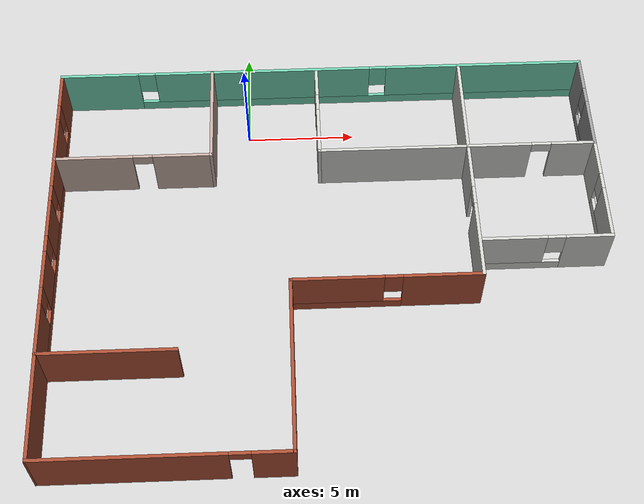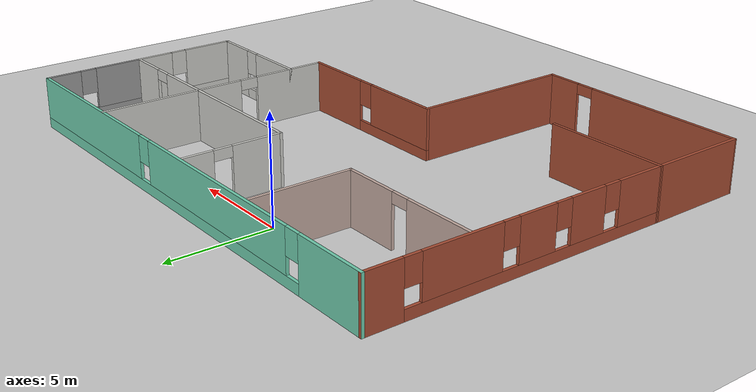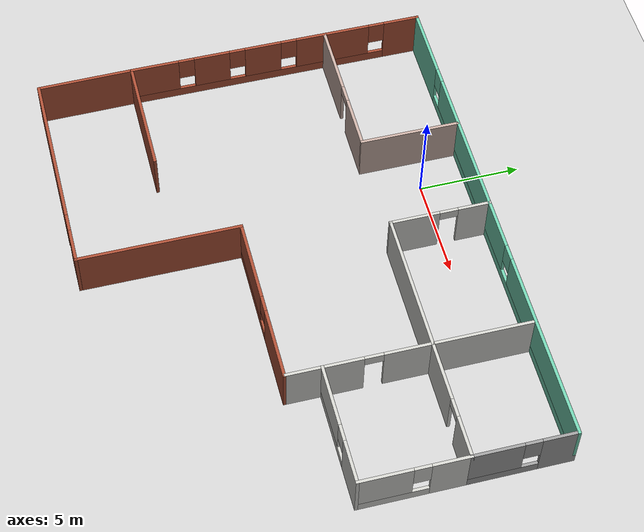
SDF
<sdf version="1.6">
 <world name="default">
  <model name="ground_plane">
   <static>1</static>
   <link name="link">
    <collision name="collision">
     <geometry><plane><normal>0 0 1</normal><size>100 100</size></plane></geometry>
     <surface>
      <contact><collide_bitmask>65535</collide_bitmask></contact>
      <friction><ode><mu>100</mu><mu2>50</mu2></ode></friction>
     </surface>
    </collision>
    <visual name="visual">
     <cast_shadows>0</cast_shadows>
     <geometry><plane><normal>0 0 1</normal><size>100 100</size></plane></geometry>
     <material>
      <script><uri>file://media/materials/scripts/gazebo.material</uri><name>Gazebo/Grey</name></script>
     </material>
    </visual>
   </link>
  </model>
  <model name="house">
   <pose>3.5945 -7.51988 0 0 -0 0</pose>
   <link name="Wall_0">
    <pose>-12.4247 2.34692 0 0 0 -1.5708</pose>
    <visual name="Wall_0_Visual_0">
     <pose>-6.57999 0 1.25 0 -0 0</pose>
     <geometry><box><size>1.84003 0.15 2.5</size></box></geometry>
     <material>
      <script><uri>file://media/materials/scripts/gazebo.material</uri><name>Gazebo/Bricks</name></script>
      <ambient>1 1 1 1</ambient>
     </material>
     <meta><layer>0</layer></meta>
    </visual>
    <collision name="Wall_0_Collision_0">
     <geometry><box><size>1.84003 0.15 2.5</size></box></geometry>
     <pose>-6.57999 0 1.25 0 -0 0</pose>
    </collision>
    <visual name="Wall_0_Visual_1">
     <pose>0.920014 0 0.25 0 -0 0</pose>
     <geometry><box><size>13.16 0.15 0.5</size></box></geometry>
     <material>
      <script><uri>file://media/materials/scripts/gazebo.material</uri><name>Gazebo/Bricks</name></script>
      <ambient>1 1 1 1</ambient>
     </material>
     <meta><layer>0</layer></meta>
    </visual>
    <collision name="Wall_0_Collision_1">
     <geometry><box><size>13.16 0.15 0.5</size></box></geometry>
     <pose>0.920014 0 0.25 0 -0 0</pose>
    </collision>
    <visual name="Wall_0_Visual_2">
     <pose>-2.95937 0 1.5 0 -0 0</pose>
     <geometry><box><size>3.80122 0.15 2</size></box></geometry>
     <material>
      <script><uri>file://media/materials/scripts/gazebo.material</uri><name>Gazebo/Bricks</name></script>
      <ambient>1 1 1 1</ambient>
     </material>
     <meta><layer>0</layer></meta>
    </visual>
    <collision name="Wall_0_Collision_2">
     <geometry><box><size>3.80122 0.15 2</size></box></geometry>
     <pose>-2.95937 0 1.5 0 -0 0</pose>
    </collision>
    <visual name="Wall_0_Visual_3">
     <pose>0.678805 0 1.5 0 -0 0</pose>
     <geometry><box><size>1.87512 0.15 2</size></box></geometry>
     <material>
      <script><uri>file://media/materials/scripts/gazebo.material</uri><name>Gazebo/Bricks</name></script>
      <ambient>1 1 1 1</ambient>
     </material>
     <meta><layer>0</layer></meta>
    </visual>
    <collision name="Wall_0_Collision_3">
     <geometry><box><size>1.87512 0.15 2</size></box></geometry>
     <pose>0.678805 0 1.5 0 -0 0</pose>
    </collision>
    <visual name="Wall_0_Visual_4">
     <pose>3.32718 0 1.5 0 -0 0</pose>
     <geometry><box><size>1.82162 0.15 2</size></box></geometry>
     <material>
      <script><uri>file://media/materials/scripts/gazebo.material</uri><name>Gazebo/Bricks</name></script>
      <ambient>1 1 1 1</ambient>
     </material>
     <meta><layer>0</layer></meta>
    </visual>
    <collision name="Wall_0_Collision_4">
     <geometry><box><size>1.82162 0.15 2</size></box></geometry>
     <pose>3.32718 0 1.5 0 -0 0</pose>
    </collision>
    <visual name="Wall_0_Visual_5">
     <pose>6.269 0 1.5 0 -0 0</pose>
     <geometry><box><size>2.46201 0.15 2</size></box></geometry>
     <material>
      <script><uri>file://media/materials/scripts/gazebo.material</uri><name>Gazebo/Bricks</name></script>
      <ambient>1 1 1 1</ambient>
     </material>
     <meta><layer>0</layer></meta>
    </visual>
    <collision name="Wall_0_Collision_5">
     <geometry><box><size>2.46201 0.15 2</size></box></geometry>
     <pose>6.269 0 1.5 0 -0 0</pose>
    </collision>
    <visual name="Wall_0_Visual_6">
     <pose>-5.25997 0 1.9 0 -0 0</pose>
     <geometry><box><size>0.8 0.15 1.2</size></box></geometry>
     <material>
      <script><uri>file://media/materials/scripts/gazebo.material</uri><name>Gazebo/Bricks</name></script>
      <ambient>1 1 1 1</ambient>
     </material>
     <meta><layer>0</layer></meta>
    </visual>
    <collision name="Wall_0_Collision_6">
     <geometry><box><size>0.8 0.15 1.2</size></box></geometry>
     <pose>-5.25997 0 1.9 0 -0 0</pose>
    </collision>
    <visual name="Wall_0_Visual_7">
     <pose>-0.658757 0 1.9 0 -0 0</pose>
     <geometry><box><size>0.8 0.15 1.2</size></box></geometry>
     <material>
      <script><uri>file://media/materials/scripts/gazebo.material</uri><name>Gazebo/Bricks</name></script>
      <ambient>1 1 1 1</ambient>
     </material>
     <meta><layer>0</layer></meta>
    </visual>
    <collision name="Wall_0_Collision_7">
     <geometry><box><size>0.8 0.15 1.2</size></box></geometry>
     <pose>-0.658757 0 1.9 0 -0 0</pose>
    </collision>
    <visual name="Wall_0_Visual_8">
     <pose>2.01637 0 1.9 0 -0 0</pose>
     <geometry><box><size>0.8 0.15 1.2</size></box></geometry>
     <material>
      <script><uri>file://media/materials/scripts/gazebo.material</uri><name>Gazebo/Bricks</name></script>
      <ambient>1 1 1 1</ambient>
     </material>
     <meta><layer>0</layer></meta>
    </visual>
    <collision name="Wall_0_Collision_8">
     <geometry><box><size>0.8 0.15 1.2</size></box></geometry>
     <pose>2.01637 0 1.9 0 -0 0</pose>
    </collision>
    <visual name="Wall_0_Visual_9">
     <pose>4.63799 0 1.9 0 -0 0</pose>
     <geometry><box><size>0.8 0.15 1.2</size></box></geometry>
     <material>
      <script><uri>file://media/materials/scripts/gazebo.material</uri><name>Gazebo/Bricks</name></script>
      <ambient>1 1 1 1</ambient>
     </material>
     <meta><layer>0</layer></meta>
    </visual>
    <collision name="Wall_0_Collision_9">
     <geometry><box><size>0.8 0.15 1.2</size></box></geometry>
     <pose>4.63799 0 1.9 0 -0 0</pose>
    </collision>
   </link>
   <link name="Wall_10">
    <pose>9.5005 -0.178123 0 0 -0 3.14159</pose>
    <visual name="Wall_10_Visual_0">
     <pose>-1.93126 0 1.25 0 -0 0</pose>
     <geometry><box><size>2.13747 0.15 2.5</size></box></geometry>
     <material>
      <script><uri>file://media/materials/scripts/gazebo.material</uri><name>Gazebo/CeilingTiled</name></script>
      <ambient>1 1 1 1</ambient>
     </material>
     <meta><layer>0</layer></meta>
    </visual>
    <collision name="Wall_10_Collision_0">
     <geometry><box><size>2.13747 0.15 2.5</size></box></geometry>
     <pose>-1.93126 0 1.25 0 -0 0</pose>
    </collision>
    <visual name="Wall_10_Visual_1">
     <pose>1.06874 0 0.25 0 -0 0</pose>
     <geometry><box><size>3.86253 0.15 0.5</size></box></geometry>
     <material>
      <script><uri>file://media/materials/scripts/gazebo.material</uri><name>Gazebo/CeilingTiled</name></script>
      <ambient>1 1 1 1</ambient>
     </material>
     <meta><layer>0</layer></meta>
    </visual>
    <collision name="Wall_10_Collision_1">
     <geometry><box><size>3.86253 0.15 0.5</size></box></geometry>
     <pose>1.06874 0 0.25 0 -0 0</pose>
    </collision>
    <visual name="Wall_10_Visual_2">
     <pose>1.46874 0 1.5 0 -0 0</pose>
     <geometry><box><size>3.06253 0.15 2</size></box></geometry>
     <material>
      <script><uri>file://media/materials/scripts/gazebo.material</uri><name>Gazebo/CeilingTiled</name></script>
      <ambient>1 1 1 1</ambient>
     </material>
     <meta><layer>0</layer></meta>
    </visual>
    <collision name="Wall_10_Collision_2">
     <geometry><box><size>3.06253 0.15 2</size></box></geometry>
     <pose>1.46874 0 1.5 0 -0 0</pose>
    </collision>
    <visual name="Wall_10_Visual_3">
     <pose>-0.462526 0 1.9 0 -0 0</pose>
     <geometry><box><size>0.8 0.15 1.2</size></box></geometry>
     <material>
      <script><uri>file://media/materials/scripts/gazebo.material</uri><name>Gazebo/CeilingTiled</name></script>
      <ambient>1 1 1 1</ambient>
     </material>
     <meta><layer>0</layer></meta>
    </visual>
    <collision name="Wall_10_Collision_3">
     <geometry><box><size>0.8 0.15 1.2</size></box></geometry>
     <pose>-0.462526 0 1.9 0 -0 0</pose>
    </collision>
   </link>
   <link name="Wall_12">
    <pose>2.4005 -1.92112 0 0 -0 3.14159</pose>
    <visual name="Wall_12_Visual_0">
     <pose>-2.46809 0 1.25 0 -0 0</pose>
     <geometry><box><size>3.56381 0.15 2.5</size></box></geometry>
     <material>
      <script><uri>file://media/materials/scripts/gazebo.material</uri><name>Gazebo/Bricks</name></script>
      <ambient>1 1 1 1</ambient>
     </material>
     <meta><layer>0</layer></meta>
    </visual>
    <collision name="Wall_12_Collision_0">
     <geometry><box><size>3.56381 0.15 2.5</size></box></geometry>
     <pose>-2.46809 0 1.25 0 -0 0</pose>
    </collision>
    <visual name="Wall_12_Visual_1">
     <pose>1.78191 0 0.25 0 -0 0</pose>
     <geometry><box><size>4.93619 0.15 0.5</size></box></geometry>
     <material>
      <script><uri>file://media/materials/scripts/gazebo.material</uri><name>Gazebo/Bricks</name></script>
      <ambient>1 1 1 1</ambient>
     </material>
     <meta><layer>0</layer></meta>
    </visual>
    <collision name="Wall_12_Collision_1">
     <geometry><box><size>4.93619 0.15 0.5</size></box></geometry>
     <pose>1.78191 0 0.25 0 -0 0</pose>
    </collision>
    <visual name="Wall_12_Visual_2">
     <pose>2.18191 0 1.5 0 -0 0</pose>
     <geometry><box><size>4.13619 0.15 2</size></box></geometry>
     <material>
      <script><uri>file://media/materials/scripts/gazebo.material</uri><name>Gazebo/Bricks</name></script>
      <ambient>1 1 1 1</ambient>
     </material>
     <meta><layer>0</layer></meta>
    </visual>
    <collision name="Wall_12_Collision_2">
     <geometry><box><size>4.13619 0.15 2</size></box></geometry>
     <pose>2.18191 0 1.5 0 -0 0</pose>
    </collision>
    <visual name="Wall_12_Visual_3">
     <pose>-0.286187 0 1.9 0 -0 0</pose>
     <geometry><box><size>0.8 0.15 1.2</size></box></geometry>
     <material>
      <script><uri>file://media/materials/scripts/gazebo.material</uri><name>Gazebo/Bricks</name></script>
      <ambient>1 1 1 1</ambient>
     </material>
     <meta><layer>0</layer></meta>
    </visual>
    <collision name="Wall_12_Collision_3">
     <geometry><box><size>0.8 0.15 1.2</size></box></geometry>
     <pose>-0.286187 0 1.9 0 -0 0</pose>
    </collision>
   </link>
   <link name="Wall_13">
    <collision name="Wall_13_Collision">
     <geometry><box><size>8 0.15 2.5</size></box></geometry>
     <pose>0 0 1.25 0 -0 0</pose>
    </collision>
    <visual name="Wall_13_Visual">
     <pose>0 0 1.25 0 -0 0</pose>
     <geometry><box><size>8 0.15 2.5</size></box></geometry>
     <material>
      <script><uri>file://media/materials/scripts/gazebo.material</uri><name>Gazebo/Bricks</name></script>
      <ambient>1 1 1 1</ambient>
     </material>
     <meta><layer>0</layer></meta>
    </visual>
    <pose>-1.7745 -5.84612 0 0 0 -1.5708</pose>
   </link>
   <link name="Wall_14">
    <pose>-7.0745 -9.77112 0 0 -0 3.14159</pose>
    <visual name="Wall_14_Visual_0">
     <pose>-4.47594 0 1.25 0 -0 0</pose>
     <geometry><box><size>1.79812 0.15 2.5</size></box></geometry>
     <material>
      <script><uri>file://media/materials/scripts/gazebo.material</uri><name>Gazebo/Bricks</name></script>
      <ambient>1 1 1 1</ambient>
     </material>
     <meta><layer>0</layer></meta>
    </visual>
    <collision name="Wall_14_Collision_0">
     <geometry><box><size>1.79812 0.15 2.5</size></box></geometry>
     <pose>-4.47594 0 1.25 0 -0 0</pose>
    </collision>
    <visual name="Wall_14_Visual_1">
     <pose>1.34906 0 1.25 0 -0 0</pose>
     <geometry><box><size>8.05188 0.15 2.5</size></box></geometry>
     <material>
      <script><uri>file://media/materials/scripts/gazebo.material</uri><name>Gazebo/Bricks</name></script>
      <ambient>1 1 1 1</ambient>
     </material>
     <meta><layer>0</layer></meta>
    </visual>
    <collision name="Wall_14_Collision_1">
     <geometry><box><size>8.05188 0.15 2.5</size></box></geometry>
     <pose>1.34906 0 1.25 0 -0 0</pose>
    </collision>
    <visual name="Wall_14_Visual_2">
     <pose>-3.12688 0 2.25 0 -0 0</pose>
     <geometry><box><size>0.9 0.15 0.5</size></box></geometry>
     <material>
      <script><uri>file://media/materials/scripts/gazebo.material</uri><name>Gazebo/Bricks</name></script>
      <ambient>1 1 1 1</ambient>
     </material>
     <meta><layer>0</layer></meta>
    </visual>
    <collision name="Wall_14_Collision_2">
     <geometry><box><size>0.9 0.15 0.5</size></box></geometry>
     <pose>-3.12688 0 2.25 0 -0 0</pose>
    </collision>
   </link>
   <link name="Wall_15">
    <collision name="Wall_15_Collision">
     <geometry><box><size>4.84331 0.15 2.5</size></box></geometry>
     <pose>0 0 1.25 0 -0 0</pose>
    </collision>
    <visual name="Wall_15_Visual">
     <pose>0 0 1.25 0 -0 0</pose>
     <geometry><box><size>4.84331 0.15 2.5</size></box></geometry>
     <material>
      <script><uri>file://media/materials/scripts/gazebo.material</uri><name>Gazebo/Bricks</name></script>
      <ambient>1 1 1 1</ambient>
     </material>
     <meta><layer>0</layer></meta>
    </visual>
    <pose>-12.3996 -7.4246 0 0 -0 1.58149</pose>
   </link>
   <link name="Wall_16">
    <collision name="Wall_16_Collision">
     <geometry><box><size>6 0.15 2.5</size></box></geometry>
     <pose>0 0 1.25 0 -0 0</pose>
    </collision>
    <visual name="Wall_16_Visual">
     <pose>0 0 1.25 0 -0 0</pose>
     <geometry><box><size>6 0.15 2.5</size></box></geometry>
     <material>
      <script><uri>file://media/materials/scripts/gazebo.material</uri><name>Gazebo/Bricks</name></script>
      <ambient>1 1 1 1</ambient>
     </material>
     <meta><layer>0</layer></meta>
    </visual>
    <pose>-9.4997 -5.07808 0 0 -0 0</pose>
   </link>
   <link name="Wall_18">
    <pose>-8.80439 4.8949 0 0 -0 0</pose>
    <visual name="Wall_18_Visual_0">
     <pose>-1.82947 0 1.25 0 -0 0</pose>
     <geometry><box><size>3.59105 0.15 2.5</size></box></geometry>
     <material>
      <script><uri>file://media/materials/scripts/gazebo.material</uri><name>Gazebo/Grey</name></script>
      <ambient>0.760784 0.662745 0.627451 1</ambient>
     </material>
     <meta><layer>0</layer></meta>
    </visual>
    <collision name="Wall_18_Collision_0">
     <geometry><box><size>3.59105 0.15 2.5</size></box></geometry>
     <pose>-1.82947 0 1.25 0 -0 0</pose>
    </collision>
    <visual name="Wall_18_Visual_1">
     <pose>2.24553 0 1.25 0 -0 0</pose>
     <geometry><box><size>2.75895 0.15 2.5</size></box></geometry>
     <material>
      <script><uri>file://media/materials/scripts/gazebo.material</uri><name>Gazebo/Grey</name></script>
      <ambient>0.760784 0.662745 0.627451 1</ambient>
     </material>
     <meta><layer>0</layer></meta>
    </visual>
    <collision name="Wall_18_Collision_1">
     <geometry><box><size>2.75895 0.15 2.5</size></box></geometry>
     <pose>2.24553 0 1.25 0 -0 0</pose>
    </collision>
    <visual name="Wall_18_Visual_2">
     <pose>0.416054 0 2.25 0 -0 0</pose>
     <geometry><box><size>0.9 0.15 0.5</size></box></geometry>
     <material>
      <script><uri>file://media/materials/scripts/gazebo.material</uri><name>Gazebo/Grey</name></script>
      <ambient>0.760784 0.662745 0.627451 1</ambient>
     </material>
     <meta><layer>0</layer></meta>
    </visual>
    <collision name="Wall_18_Collision_2">
     <geometry><box><size>0.9 0.15 0.5</size></box></geometry>
     <pose>0.416054 0 2.25 0 -0 0</pose>
    </collision>
   </link>
   <link name="Wall_21">
    <collision name="Wall_21_Collision">
     <geometry><box><size>5 0.15 2.5</size></box></geometry>
     <pose>0 0 1.25 0 -0 0</pose>
    </collision>
    <visual name="Wall_21_Visual">
     <pose>0 0 1.25 0 -0 0</pose>
     <geometry><box><size>5 0.15 2.5</size></box></geometry>
     <material>
      <script><uri>file://media/materials/scripts/gazebo.material</uri><name>Gazebo/Grey</name></script>
      <ambient>0.760784 0.662745 0.627451 1</ambient>
     </material>
     <meta><layer>0</layer></meta>
    </visual>
    <pose>-5.25439 7.3199 0 0 -0 1.5708</pose>
   </link>
   <link name="Wall_23">
    <collision name="Wall_23_Collision">
     <geometry><box><size>5 0.15 2.5</size></box></geometry>
     <pose>0 0 1.25 0 -0 0</pose>
    </collision>
    <visual name="Wall_23_Visual">
     <pose>0 0 1.25 0 -0 0</pose>
     <geometry><box><size>5 0.15 2.5</size></box></geometry>
     <material>
      <script><uri>file://media/materials/scripts/gazebo.material</uri><name>Gazebo/CeilingTiled</name></script>
      <ambient>1 1 1 1</ambient>
     </material>
     <meta><layer>0</layer></meta>
    </visual>
    <pose>6.5755 7.34688 0 0 -0 1.5708</pose>
   </link>
   <link name="Wall_25">
    <collision name="Wall_25_Collision">
     <geometry><box><size>7 0.15 2.5</size></box></geometry>
     <pose>0 0 1.25 0 -0 0</pose>
    </collision>
    <visual name="Wall_25_Visual">
     <pose>0 0 1.25 0 -0 0</pose>
     <geometry><box><size>7 0.15 2.5</size></box></geometry>
     <material>
      <script><uri>file://media/materials/scripts/gazebo.material</uri><name>Gazebo/CeilingTiled</name></script>
      <ambient>1 1 1 1</ambient>
     </material>
     <meta><layer>0</layer></meta>
    </visual>
    <pose>3.1505 4.92188 0 0 -0 3.14159</pose>
   </link>
   <link name="Wall_26">
    <pose>-0.274503 7.34688 0 0 -0 1.5708</pose>
    <visual name="Wall_26_Visual_0">
     <pose>-1.26474 0 1.25 0 -0 0</pose>
     <geometry><box><size>2.47052 0.15 2.5</size></box></geometry>
     <material>
      <script><uri>file://media/materials/scripts/gazebo.material</uri><name>Gazebo/CeilingTiled</name></script>
      <ambient>1 1 1 1</ambient>
     </material>
     <meta><layer>0</layer></meta>
    </visual>
    <collision name="Wall_26_Collision_0">
     <geometry><box><size>2.47052 0.15 2.5</size></box></geometry>
     <pose>-1.26474 0 1.25 0 -0 0</pose>
    </collision>
    <visual name="Wall_26_Visual_1">
     <pose>1.68526 0 1.25 0 -0 0</pose>
     <geometry><box><size>1.62948 0.15 2.5</size></box></geometry>
     <material>
      <script><uri>file://media/materials/scripts/gazebo.material</uri><name>Gazebo/CeilingTiled</name></script>
      <ambient>1 1 1 1</ambient>
     </material>
     <meta><layer>0</layer></meta>
    </visual>
    <collision name="Wall_26_Collision_1">
     <geometry><box><size>1.62948 0.15 2.5</size></box></geometry>
     <pose>1.68526 0 1.25 0 -0 0</pose>
    </collision>
    <visual name="Wall_26_Visual_2">
     <pose>0.420524 0 2.25 0 -0 0</pose>
     <geometry><box><size>0.9 0.15 0.5</size></box></geometry>
     <material>
      <script><uri>file://media/materials/scripts/gazebo.material</uri><name>Gazebo/CeilingTiled</name></script>
      <ambient>1 1 1 1</ambient>
     </material>
     <meta><layer>0</layer></meta>
    </visual>
    <collision name="Wall_26_Collision_2">
     <geometry><box><size>0.9 0.15 0.5</size></box></geometry>
     <pose>0.420524 0 2.25 0 -0 0</pose>
    </collision>
   </link>
   <link name="Wall_28">
    <pose>9.5005 4.92188 0 0 -0 0</pose>
    <visual name="Wall_28_Visual_0">
     <pose>-1.49374 0 1.25 0 -0 0</pose>
     <geometry><box><size>3.01253 0.15 2.5</size></box></geometry>
     <material>
      <script><uri>file://media/materials/scripts/gazebo.material</uri><name>Gazebo/CeilingTiled</name></script>
      <ambient>1 1 1 1</ambient>
     </material>
     <meta><layer>0</layer></meta>
    </visual>
    <collision name="Wall_28_Collision_0">
     <geometry><box><size>3.01253 0.15 2.5</size></box></geometry>
     <pose>-1.49374 0 1.25 0 -0 0</pose>
    </collision>
    <visual name="Wall_28_Visual_1">
     <pose>1.95626 0 1.25 0 -0 0</pose>
     <geometry><box><size>2.08747 0.15 2.5</size></box></geometry>
     <material>
      <script><uri>file://media/materials/scripts/gazebo.material</uri><name>Gazebo/CeilingTiled</name></script>
      <ambient>1 1 1 1</ambient>
     </material>
     <meta><layer>0</layer></meta>
    </visual>
    <collision name="Wall_28_Collision_1">
     <geometry><box><size>2.08747 0.15 2.5</size></box></geometry>
     <pose>1.95626 0 1.25 0 -0 0</pose>
    </collision>
    <visual name="Wall_28_Visual_2">
     <pose>0.462526 0 2.25 0 -0 0</pose>
     <geometry><box><size>0.9 0.15 0.5</size></box></geometry>
     <material>
      <script><uri>file://media/materials/scripts/gazebo.material</uri><name>Gazebo/CeilingTiled</name></script>
      <ambient>1 1 1 1</ambient>
     </material>
     <meta><layer>0</layer></meta>
    </visual>
    <collision name="Wall_28_Collision_2">
     <geometry><box><size>0.9 0.15 0.5</size></box></geometry>
     <pose>0.462526 0 2.25 0 -0 0</pose>
    </collision>
   </link>
   <link name="Wall_3">
    <pose>0.000298 9.77192 0 0 -0 0</pose>
    <visual name="Wall_3_Visual_0">
     <pose>-10.6443 0 1.25 0 -0 0</pose>
     <geometry><box><size>3.71137 0.15 2.5</size></box></geometry>
     <material>
      <script><uri>file://media/materials/scripts/gazebo.material</uri><name>Gazebo/Grey</name></script>
      <ambient>0.435294 0.796078 0.67451 1</ambient>
     </material>
     <meta><layer>0</layer></meta>
    </visual>
    <collision name="Wall_3_Collision_0">
     <geometry><box><size>3.71137 0.15 2.5</size></box></geometry>
     <pose>-10.6443 0 1.25 0 -0 0</pose>
    </collision>
    <visual name="Wall_3_Visual_1">
     <pose>1.85568 0 0.25 0 -0 0</pose>
     <geometry><box><size>21.2886 0.15 0.5</size></box></geometry>
     <material>
      <script><uri>file://media/materials/scripts/gazebo.material</uri><name>Gazebo/Grey</name></script>
      <ambient>0.435294 0.796078 0.67451 1</ambient>
     </material>
     <meta><layer>0</layer></meta>
    </visual>
    <collision name="Wall_3_Collision_1">
     <geometry><box><size>21.2886 0.15 0.5</size></box></geometry>
     <pose>1.85568 0 0.25 0 -0 0</pose>
    </collision>
    <visual name="Wall_3_Visual_2">
     <pose>-2.85112 0 1.5 0 -0 0</pose>
     <geometry><box><size>10.275 0.15 2</size></box></geometry>
     <material>
      <script><uri>file://media/materials/scripts/gazebo.material</uri><name>Gazebo/Grey</name></script>
      <ambient>0.435294 0.796078 0.67451 1</ambient>
     </material>
     <meta><layer>0</layer></meta>
    </visual>
    <collision name="Wall_3_Collision_2">
     <geometry><box><size>10.275 0.15 2</size></box></geometry>
     <pose>-2.85112 0 1.5 0 -0 0</pose>
    </collision>
    <visual name="Wall_3_Visual_3">
     <pose>7.79319 0 1.5 0 -0 0</pose>
     <geometry><box><size>9.41362 0.15 2</size></box></geometry>
     <material>
      <script><uri>file://media/materials/scripts/gazebo.material</uri><name>Gazebo/Grey</name></script>
      <ambient>0.435294 0.796078 0.67451 1</ambient>
     </material>
     <meta><layer>0</layer></meta>
    </visual>
    <collision name="Wall_3_Collision_3">
     <geometry><box><size>9.41362 0.15 2</size></box></geometry>
     <pose>7.79319 0 1.5 0 -0 0</pose>
    </collision>
    <visual name="Wall_3_Visual_4">
     <pose>-8.38863 0 1.9 0 -0 0</pose>
     <geometry><box><size>0.8 0.15 1.2</size></box></geometry>
     <material>
      <script><uri>file://media/materials/scripts/gazebo.material</uri><name>Gazebo/Grey</name></script>
      <ambient>0.435294 0.796078 0.67451 1</ambient>
     </material>
     <meta><layer>0</layer></meta>
    </visual>
    <collision name="Wall_3_Collision_4">
     <geometry><box><size>0.8 0.15 1.2</size></box></geometry>
     <pose>-8.38863 0 1.9 0 -0 0</pose>
    </collision>
    <visual name="Wall_3_Visual_5">
     <pose>2.68639 0 1.9 0 -0 0</pose>
     <geometry><box><size>0.8 0.15 1.2</size></box></geometry>
     <material>
      <script><uri>file://media/materials/scripts/gazebo.material</uri><name>Gazebo/Grey</name></script>
      <ambient>0.435294 0.796078 0.67451 1</ambient>
     </material>
     <meta><layer>0</layer></meta>
    </visual>
    <collision name="Wall_3_Collision_5">
     <geometry><box><size>0.8 0.15 1.2</size></box></geometry>
     <pose>2.68639 0 1.9 0 -0 0</pose>
    </collision>
   </link>
   <link name="Wall_5">
    <pose>12.4254 7.3469 0 0 0 -1.57075</pose>
    <visual name="Wall_5_Visual_0">
     <pose>-1.6335 0 1.25 0 -0 0</pose>
     <geometry><box><size>1.73299 0.15 2.5</size></box></geometry>
     <material>
      <script><uri>file://media/materials/scripts/gazebo.material</uri><name>Gazebo/Grey</name></script>
      <ambient>1 1 1 1</ambient>
     </material>
     <meta><layer>0</layer></meta>
    </visual>
    <collision name="Wall_5_Collision_0">
     <geometry><box><size>1.73299 0.15 2.5</size></box></geometry>
     <pose>-1.6335 0 1.25 0 -0 0</pose>
    </collision>
    <visual name="Wall_5_Visual_1">
     <pose>0.866497 0 0.25 0 -0 0</pose>
     <geometry><box><size>3.26701 0.15 0.5</size></box></geometry>
     <material>
      <script><uri>file://media/materials/scripts/gazebo.material</uri><name>Gazebo/Grey</name></script>
      <ambient>1 1 1 1</ambient>
     </material>
     <meta><layer>0</layer></meta>
    </visual>
    <collision name="Wall_5_Collision_1">
     <geometry><box><size>3.26701 0.15 0.5</size></box></geometry>
     <pose>0.866497 0 0.25 0 -0 0</pose>
    </collision>
    <visual name="Wall_5_Visual_2">
     <pose>1.2665 0 1.5 0 -0 0</pose>
     <geometry><box><size>2.46701 0.15 2</size></box></geometry>
     <material>
      <script><uri>file://media/materials/scripts/gazebo.material</uri><name>Gazebo/Grey</name></script>
      <ambient>1 1 1 1</ambient>
     </material>
     <meta><layer>0</layer></meta>
    </visual>
    <collision name="Wall_5_Collision_2">
     <geometry><box><size>2.46701 0.15 2</size></box></geometry>
     <pose>1.2665 0 1.5 0 -0 0</pose>
    </collision>
    <visual name="Wall_5_Visual_3">
     <pose>-0.367006 0 1.9 0 -0 0</pose>
     <geometry><box><size>0.8 0.15 1.2</size></box></geometry>
     <material>
      <script><uri>file://media/materials/scripts/gazebo.material</uri><name>Gazebo/Grey</name></script>
      <ambient>1 1 1 1</ambient>
     </material>
     <meta><layer>0</layer></meta>
    </visual>
    <collision name="Wall_5_Collision_3">
     <geometry><box><size>0.8 0.15 1.2</size></box></geometry>
     <pose>-0.367006 0 1.9 0 -0 0</pose>
    </collision>
   </link>
   <link name="Wall_7">
    <pose>6.5755 1.50038 0 0 0 -1.5708</pose>
    <visual name="Wall_7_Visual_0">
     <pose>-2.32463 0 1.25 0 -0 0</pose>
     <geometry><box><size>2.34374 0.15 2.5</size></box></geometry>
     <material>
      <script><uri>file://media/materials/scripts/gazebo.material</uri><name>Gazebo/CeilingTiled</name></script>
      <ambient>1 1 1 1</ambient>
     </material>
     <meta><layer>0</layer></meta>
    </visual>
    <collision name="Wall_7_Collision_0">
     <geometry><box><size>2.34374 0.15 2.5</size></box></geometry>
     <pose>-2.32463 0 1.25 0 -0 0</pose>
    </collision>
    <visual name="Wall_7_Visual_1">
     <pose>1.62187 0 1.25 0 -0 0</pose>
     <geometry><box><size>3.74926 0.15 2.5</size></box></geometry>
     <material>
      <script><uri>file://media/materials/scripts/gazebo.material</uri><name>Gazebo/CeilingTiled</name></script>
      <ambient>1 1 1 1</ambient>
     </material>
     <meta><layer>0</layer></meta>
    </visual>
    <collision name="Wall_7_Collision_1">
     <geometry><box><size>3.74926 0.15 2.5</size></box></geometry>
     <pose>1.62187 0 1.25 0 -0 0</pose>
    </collision>
    <visual name="Wall_7_Visual_2">
     <pose>-0.702764 0 2.25 0 -0 0</pose>
     <geometry><box><size>0.9 0.15 0.5</size></box></geometry>
     <material>
      <script><uri>file://media/materials/scripts/gazebo.material</uri><name>Gazebo/CeilingTiled</name></script>
      <ambient>1 1 1 1</ambient>
     </material>
     <meta><layer>0</layer></meta>
    </visual>
    <collision name="Wall_7_Collision_2">
     <geometry><box><size>0.9 0.15 0.5</size></box></geometry>
     <pose>-0.702764 0 2.25 0 -0 0</pose>
    </collision>
   </link>
   <link name="Wall_9">
    <pose>12.4255 2.37188 0 0 0 -1.5708</pose>
    <visual name="Wall_9_Visual_0">
     <pose>-1.69564 0 1.25 0 -0 0</pose>
     <geometry><box><size>1.85871 0.15 2.5</size></box></geometry>
     <material>
      <script><uri>file://media/materials/scripts/gazebo.material</uri><name>Gazebo/CeilingTiled</name></script>
      <ambient>1 1 1 1</ambient>
     </material>
     <meta><layer>0</layer></meta>
    </visual>
    <collision name="Wall_9_Collision_0">
     <geometry><box><size>1.85871 0.15 2.5</size></box></geometry>
     <pose>-1.69564 0 1.25 0 -0 0</pose>
    </collision>
    <visual name="Wall_9_Visual_1">
     <pose>0.929356 0 0.25 0 -0 0</pose>
     <geometry><box><size>3.39129 0.15 0.5</size></box></geometry>
     <material>
      <script><uri>file://media/materials/scripts/gazebo.material</uri><name>Gazebo/CeilingTiled</name></script>
      <ambient>1 1 1 1</ambient>
     </material>
     <meta><layer>0</layer></meta>
    </visual>
    <collision name="Wall_9_Collision_1">
     <geometry><box><size>3.39129 0.15 0.5</size></box></geometry>
     <pose>0.929356 0 0.25 0 -0 0</pose>
    </collision>
    <visual name="Wall_9_Visual_2">
     <pose>1.32936 0 1.5 0 -0 0</pose>
     <geometry><box><size>2.59129 0.15 2</size></box></geometry>
     <material>
      <script><uri>file://media/materials/scripts/gazebo.material</uri><name>Gazebo/CeilingTiled</name></script>
      <ambient>1 1 1 1</ambient>
     </material>
     <meta><layer>0</layer></meta>
    </visual>
    <collision name="Wall_9_Collision_2">
     <geometry><box><size>2.59129 0.15 2</size></box></geometry>
     <pose>1.32936 0 1.5 0 -0 0</pose>
    </collision>
    <visual name="Wall_9_Visual_3">
     <pose>-0.366289 0 1.9 0 -0 0</pose>
     <geometry><box><size>0.8 0.15 1.2</size></box></geometry>
     <material>
      <script><uri>file://media/materials/scripts/gazebo.material</uri><name>Gazebo/CeilingTiled</name></script>
      <ambient>1 1 1 1</ambient>
     </material>
     <meta><layer>0</layer></meta>
    </visual>
    <collision name="Wall_9_Collision_3">
     <geometry><box><size>0.8 0.15 1.2</size></box></geometry>
     <pose>-0.366289 0 1.9 0 -0 0</pose>
    </collision>
   </link>
   <static>1</static>
  </model>
 </world>
</sdf>
